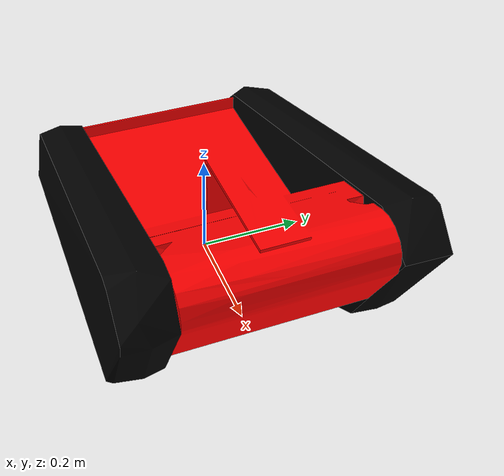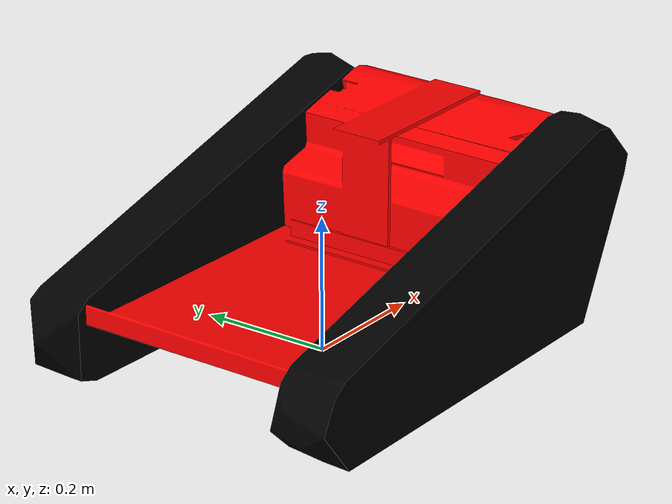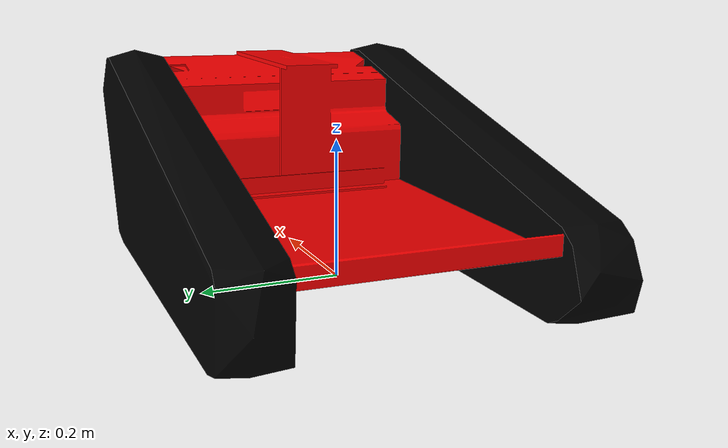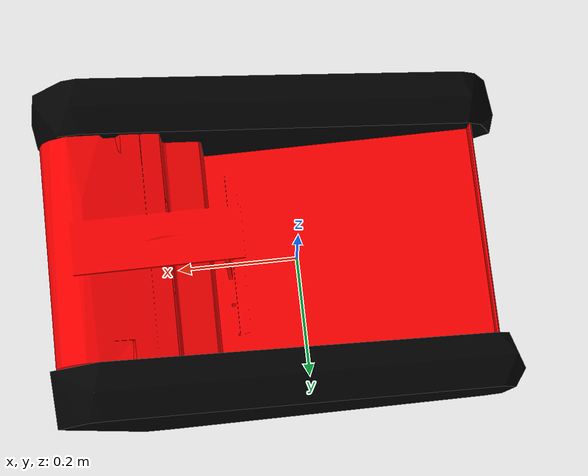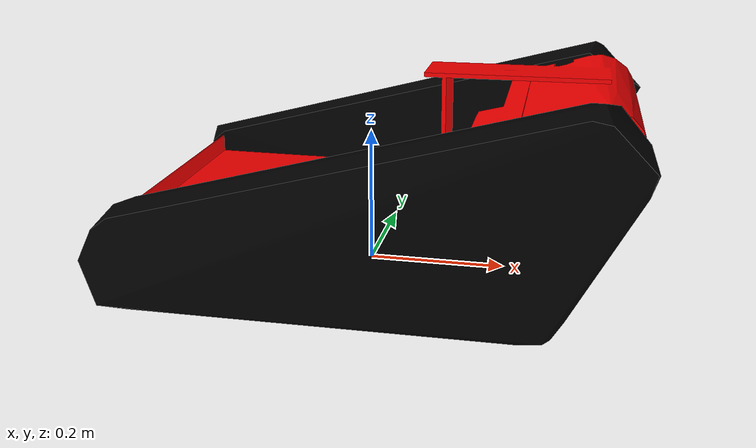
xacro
<?xml version="1.0"?>

<robot xmlns:xacro="http://ros.org/wiki/xacro"
name="mesa">

<!-- Chassis -->

	<link name="robot_footprint">
	</link>

	<link name="base_link">
		<inertial>
			<mass value="12.0"/>
			<origin xyz="0.0 0.0 0.0"/>
			<inertia ixx="1" ixy="0" ixz="0"
				 iyy="1" iyz="0"
				 izz="1"/>
		</inertial>
		<visual name="base_visual">
			<origin xyz="0.1 0.01 0" rpy="1.5757105 0 0"/>
			<geometry>
				<mesh filename="package://tedusar_mesa_element/meshes/mesa_body.stl" scale="0.001 0.001 0.001"/>
			</geometry>
			<material name="Red">
				<color rgba="1.0 0.0 0.0 1.0"/>
			</material>
		</visual>
		<collision>
			<origin xyz="0.04 0 0.1" rpy="0 0 0"/>
			<geometry>
				<box size="0.70 0.35 0.20"/>
			</geometry>
		</collision>
	</link>

	 <joint name="footprint_base_joint" type="fixed">
		<origin xyz="0 0.0 0.1" rpy="0 0 0"/>
		<parent link="robot_footprint"/>
		<child link="base_link"/>
	 </joint>

	<link name="left_track_link">
		<inertial>
			<mass value="0.01"/> <!-- dummy mass -->
			<origin xyz="0.01 0.01 0.01"/>
			<inertia ixx="1" ixy="0" ixz="0"
				 iyy="1" iyz="0"
				 izz="1"/>
		</inertial>
		<visual name="base_visual">
			<origin xyz="0.1 0.01 0" rpy="1.5757105 0 0"/>
			<geometry>
				<mesh filename="package://tedusar_mesa_element/meshes/mesa_left_track.stl" scale="0.001 0.001 0.001"/>
			</geometry>
			<material name="Black">
				<color rgba="0.0 0.0 0.0 1.0"/>
			</material>
		</visual>
		<collision>
			<origin xyz="0.03 0.235 0.055" rpy="0 0 0"/>
			<geometry>
				<box size="0.75 0.1 0.31"/>
			</geometry>
		</collision>
	</link>

	 <joint name="left_track_base_joint" type="fixed">
		<origin xyz="0 0.0 0.0" rpy="0 0 0"/>
		<parent link="base_link"/>
		<child link="left_track_link"/>
	 </joint>

	<link name="right_track_link">
		<inertial>
			<mass value="0.01"/> <!-- dummy mass -->
			<origin xyz="0.01 0.01 0.01"/>
			<inertia ixx="1" ixy="0" ixz="0"
				 iyy="1" iyz="0"
				 izz="1"/>
		</inertial>
		<visual name="base_visual">
			<origin xyz="0.1 0.01 0" rpy="1.5757105 0 0"/>
			<geometry>
				<mesh filename="package://tedusar_mesa_element/meshes/mesa_right_track.stl" scale="0.001 0.001 0.001"/>
			</geometry>
			<material name="Black">
				<color rgba="0.0 0.0 0.0 1.0"/>
			</material>
		</visual>
		<collision>
			<origin xyz="0.03 -0.235 0.055" rpy="0 0 0"/>
			<geometry>
				<box size="0.75 0.1 0.31"/>
			</geometry>
		</collision>
	</link>

	 <joint name="right_track_base_joint" type="fixed">
		<origin xyz="0 0.0 0.0" rpy="0 0 0"/>
		<parent link="base_link"/>
		<child link="right_track_link"/>
	 </joint>

</robot>
